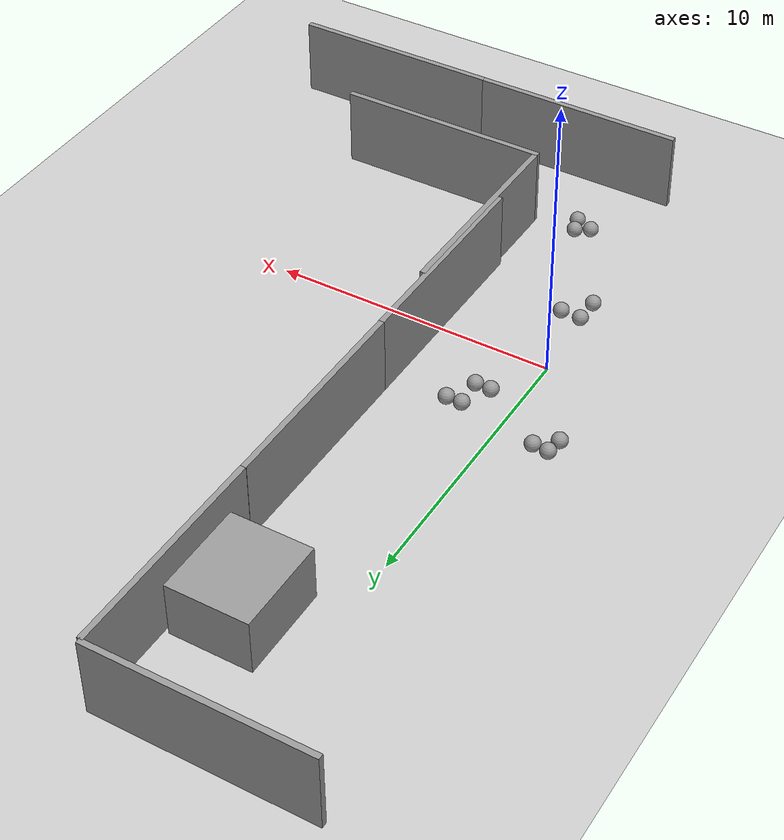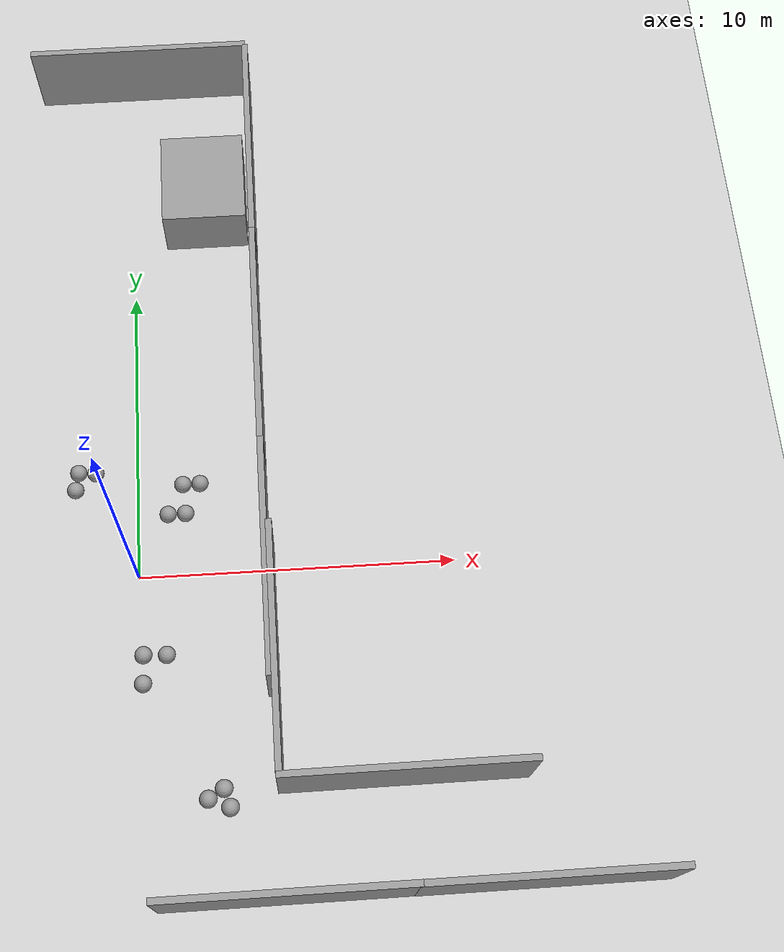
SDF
<sdf version="1.7">
 <world name="default">
  <model name="ground_plane">
   <static>1</static>
   <link name="link">
    <collision name="collision">
     <geometry><plane><normal>0 0 1</normal><size>100 100</size></plane></geometry>
     <surface><friction><ode><mu>100</mu><mu2>50</mu2></ode></friction></surface>
    </collision>
    <visual name="visual">
     <cast_shadows>0</cast_shadows>
     <geometry><plane><normal>0 0 1</normal><size>100 100</size></plane></geometry>
     <material>
      <script><uri>file://media/materials/scripts/gazebo.material</uri><name>Gazebo/Grey</name></script>
     </material>
    </visual>
   </link>
  </model>
  <model name="grey_wall_clone">
   <static>1</static>
   <link name="link">
    <pose>0 0 1.4 0 -0 0</pose>
    <collision name="collision"><geometry><box><size>7.5 0.2 2.8</size></box></geometry></collision>
    <visual name="visual">
     <cast_shadows>0</cast_shadows>
     <geometry><box><size>7.5 0.2 2.8</size></box></geometry>
     <material>
      <script>
       <uri>model://grey_wall/materials/scripts</uri>
       <uri>model://grey_wall/materials/textures</uri>
       <name>vrc/grey_wall</name>
      </script>
     </material>
    </visual>
   </link>
   <pose>4.03876 -0.275369 0 0 0 -1.57834</pose>
  </model>
  <model name="grey_wall_clone_1">
   <static>1</static>
   <link name="link">
    <pose>0 0 1.4 0 -0 0</pose>
    <collision name="collision"><geometry><box><size>7.5 0.2 2.8</size></box></geometry></collision>
    <visual name="visual">
     <cast_shadows>0</cast_shadows>
     <geometry><box><size>7.5 0.2 2.8</size></box></geometry>
     <material>
      <script>
       <uri>model://grey_wall/materials/scripts</uri>
       <uri>model://grey_wall/materials/textures</uri>
       <name>vrc/grey_wall</name>
      </script>
     </material>
    </visual>
   </link>
   <pose>4.09471 7.22499 0 0 0 -1.57834</pose>
  </model>
  <model name="grey_wall_clone_2">
   <static>1</static>
   <link name="link">
    <pose>0 0 1.4 0 -0 0</pose>
    <collision name="collision"><geometry><box><size>7.5 0.2 2.8</size></box></geometry></collision>
    <visual name="visual">
     <cast_shadows>0</cast_shadows>
     <geometry><box><size>7.5 0.2 2.8</size></box></geometry>
     <material>
      <script>
       <uri>model://grey_wall/materials/scripts</uri>
       <uri>model://grey_wall/materials/textures</uri>
       <name>vrc/grey_wall</name>
      </script>
     </material>
    </visual>
   </link>
   <pose>4.15738 14.7199 0 0 0 -1.57834</pose>
  </model>
  <model name="grey_wall_clone_3_clone">
   <static>1</static>
   <link name="link">
    <pose>0 0 1.4 0 -0 0</pose>
    <collision name="collision"><geometry><box><size>7.5 0.2 2.8</size></box></geometry></collision>
    <visual name="visual">
     <cast_shadows>0</cast_shadows>
     <geometry><box><size>7.5 0.2 2.8</size></box></geometry>
     <material>
      <script>
       <uri>model://grey_wall/materials/scripts</uri>
       <uri>model://grey_wall/materials/textures</uri>
       <name>vrc/grey_wall</name>
      </script>
     </material>
    </visual>
   </link>
   <pose>0.448601 18.5165 -0 0 -0 0.002725</pose>
  </model>
  <model name="unit_box">
   <pose>2.5145 13.6164 0.980728 -0 1e-06 0.000988</pose>
   <link name="link">
    <inertial>
     <mass>1</mass>
     <inertia>
      <ixx>0.166667</ixx>
      <ixy>0</ixy>
      <ixz>0</ixz>
      <iyy>0.166667</iyy>
      <iyz>0</iyz>
      <izz>0.166667</izz>
     </inertia>
    </inertial>
    <collision name="collision"><geometry><box><size>2.81702 3.26007 1.96146</size></box></geometry></collision>
    <visual name="visual">
     <geometry><box><size>2.81702 3.26007 1.96146</size></box></geometry>
     <material>
      <script><name>Gazebo/Grey</name><uri>file://media/materials/scripts/gazebo.material</uri></script>
     </material>
    </visual>
   </link>
  </model>
  <model name="grey_wall_clone_3_clone_4">
   <static>1</static>
   <link name="link">
    <pose>0 0 1.4 0 -0 0</pose>
    <collision name="collision"><geometry><box><size>7.5 0.2 2.8</size></box></geometry></collision>
    <visual name="visual">
     <cast_shadows>0</cast_shadows>
     <geometry><box><size>7.5 0.2 2.8</size></box></geometry>
     <material>
      <script>
       <uri>model://grey_wall/materials/scripts</uri>
       <uri>model://grey_wall/materials/textures</uri>
       <name>vrc/grey_wall</name>
      </script>
     </material>
    </visual>
   </link>
   <pose>4.18093 -9.98458 -0 0 -0 0.002725</pose>
  </model>
  <model name="grey_wall_clone_3_clone_5">
   <static>1</static>
   <link name="link">
    <pose>0 0 1.4 0 -0 0</pose>
    <collision name="collision"><geometry><box><size>7.5 0.2 2.8</size></box></geometry></collision>
    <visual name="visual">
     <cast_shadows>0</cast_shadows>
     <geometry><box><size>7.5 0.2 2.8</size></box></geometry>
     <material>
      <script>
       <uri>model://grey_wall/materials/scripts</uri>
       <uri>model://grey_wall/materials/textures</uri>
       <name>vrc/grey_wall</name>
      </script>
     </material>
    </visual>
   </link>
   <pose>7.80817 -6.82182 -0 0 -0 0.002725</pose>
  </model>
  <model name="grey_wall_clone_3_clone_6">
   <static>1</static>
   <link name="link">
    <pose>0 0 1.4 0 -0 0</pose>
    <collision name="collision"><geometry><box><size>7.5 0.2 2.8</size></box></geometry></collision>
    <visual name="visual">
     <cast_shadows>0</cast_shadows>
     <geometry><box><size>7.5 0.2 2.8</size></box></geometry>
     <material>
      <script>
       <uri>model://grey_wall/materials/scripts</uri>
       <uri>model://grey_wall/materials/textures</uri>
       <name>vrc/grey_wall</name>
      </script>
     </material>
    </visual>
   </link>
   <pose>11.5884 -9.97036 -0 0 -0 0.002725</pose>
  </model>
  <model name="grey_wall_clone_clone">
   <static>1</static>
   <link name="link">
    <pose>0 0 1.4 0 -0 0</pose>
    <collision name="collision"><geometry><box><size>7.5 0.2 2.8</size></box></geometry></collision>
    <visual name="visual">
     <cast_shadows>0</cast_shadows>
     <geometry><box><size>7.5 0.2 2.8</size></box></geometry>
     <material>
      <script>
       <uri>model://grey_wall/materials/scripts</uri>
       <uri>model://grey_wall/materials/textures</uri>
       <name>vrc/grey_wall</name>
      </script>
     </material>
    </visual>
   </link>
   <pose>4.16941 -2.99665 0 0 0 -1.57834</pose>
  </model>
  <model name="unit_sphere">
   <pose>0.10273 -3.45151 0.271614 0 -0 0</pose>
   <link name="link">
    <inertial>
     <mass>1</mass>
     <inertia><ixx>0.1</ixx><ixy>0</ixy><ixz>0</ixz><iyy>0.1</iyy><iyz>0</iyz><izz>0.1</izz></inertia>
    </inertial>
    <collision name="collision"><geometry><sphere><radius>0.271614</radius></sphere></geometry></collision>
    <visual name="visual">
     <geometry><sphere><radius>0.271614</radius></sphere></geometry>
     <material>
      <script><name>Gazebo/Grey</name><uri>file://media/materials/scripts/gazebo.material</uri></script>
     </material>
    </visual>
   </link>
  </model>
  <model name="unit_sphere_clone">
   <pose>0.842718 -2.58838 0.271614 0 -0 0</pose>
   <link name="link">
    <inertial>
     <mass>1</mass>
     <inertia><ixx>0.1</ixx><ixy>0</ixy><ixz>0</ixz><iyy>0.1</iyy><iyz>0</iyz><izz>0.1</izz></inertia>
    </inertial>
    <collision name="collision"><geometry><sphere><radius>0.271614</radius></sphere></geometry></collision>
    <visual name="visual">
     <geometry><sphere><radius>0.271614</radius></sphere></geometry>
     <material>
      <script><name>Gazebo/Grey</name><uri>file://media/materials/scripts/gazebo.material</uri></script>
     </material>
    </visual>
   </link>
  </model>
  <model name="unit_sphere_clone_0">
   <pose>0.122087 -2.55595 0.271614 0 -0 0</pose>
   <link name="link">
    <inertial>
     <mass>1</mass>
     <inertia><ixx>0.1</ixx><ixy>0</ixy><ixz>0</ixz><iyy>0.1</iyy><iyz>0</iyz><izz>0.1</izz></inertia>
    </inertial>
    <collision name="collision"><geometry><sphere><radius>0.271614</radius></sphere></geometry></collision>
    <visual name="visual">
     <geometry><sphere><radius>0.271614</radius></sphere></geometry>
     <material>
      <script><name>Gazebo/Grey</name><uri>file://media/materials/scripts/gazebo.material</uri></script>
     </material>
    </visual>
   </link>
  </model>
  <model name="unit_sphere_clone_7">
   <pose>1.52386 2 0.271614 0 0.029504 0</pose>
   <link name="link">
    <inertial>
     <mass>1</mass>
     <inertia><ixx>0.1</ixx><ixy>0</ixy><ixz>0</ixz><iyy>0.1</iyy><iyz>0</iyz><izz>0.1</izz></inertia>
    </inertial>
    <collision name="collision"><geometry><sphere><radius>0.271614</radius></sphere></geometry></collision>
    <visual name="visual">
     <geometry><sphere><radius>0.271614</radius></sphere></geometry>
     <material>
      <script><name>Gazebo/Grey</name><uri>file://media/materials/scripts/gazebo.material</uri></script>
     </material>
    </visual>
   </link>
  </model>
  <model name="unit_sphere_clone_8">
   <pose>2.00935 3 0.271614 0 0.018438 0</pose>
   <link name="link">
    <inertial>
     <mass>1</mass>
     <inertia><ixx>0.1</ixx><ixy>0</ixy><ixz>0</ixz><iyy>0.1</iyy><iyz>0</iyz><izz>0.1</izz></inertia>
    </inertial>
    <collision name="collision"><geometry><sphere><radius>0.271614</radius></sphere></geometry></collision>
    <visual name="visual">
     <geometry><sphere><radius>0.271614</radius></sphere></geometry>
     <material>
      <script><name>Gazebo/Grey</name><uri>file://media/materials/scripts/gazebo.material</uri></script>
     </material>
    </visual>
   </link>
  </model>
  <model name="unit_sphere_clone_9">
   <pose>0.964646 2 0.271614 0 -0.029411 0</pose>
   <link name="link">
    <inertial>
     <mass>1</mass>
     <inertia><ixx>0.1</ixx><ixy>0</ixy><ixz>0</ixz><iyy>0.1</iyy><iyz>0</iyz><izz>0.1</izz></inertia>
    </inertial>
    <collision name="collision"><geometry><sphere><radius>0.271614</radius></sphere></geometry></collision>
    <visual name="visual">
     <geometry><sphere><radius>0.271614</radius></sphere></geometry>
     <material>
      <script><name>Gazebo/Grey</name><uri>file://media/materials/scripts/gazebo.material</uri></script>
     </material>
    </visual>
   </link>
  </model>
  <model name="unit_sphere_clone_10">
   <pose>1.45614 3 0.271614 0 -0.018372 0</pose>
   <link name="link">
    <inertial>
     <mass>1</mass>
     <inertia><ixx>0.1</ixx><ixy>0</ixy><ixz>0</ixz><iyy>0.1</iyy><iyz>0</iyz><izz>0.1</izz></inertia>
    </inertial>
    <collision name="collision"><geometry><sphere><radius>0.271614</radius></sphere></geometry></collision>
    <visual name="visual">
     <geometry><sphere><radius>0.271614</radius></sphere></geometry>
     <material>
      <script><name>Gazebo/Grey</name><uri>file://media/materials/scripts/gazebo.material</uri></script>
     </material>
    </visual>
   </link>
  </model>
  <model name="unit_sphere_clone_11">
   <pose>-1.90526 3.5926 0.271614 -0.00212 -0.025744 4e-05</pose>
   <link name="link">
    <inertial>
     <mass>1</mass>
     <inertia><ixx>0.1</ixx><ixy>0</ixy><ixz>0</ixz><iyy>0.1</iyy><iyz>0</iyz><izz>0.1</izz></inertia>
    </inertial>
    <collision name="collision"><geometry><sphere><radius>0.271614</radius></sphere></geometry></collision>
    <visual name="visual">
     <geometry><sphere><radius>0.271614</radius></sphere></geometry>
     <material>
      <script><name>Gazebo/Grey</name><uri>file://media/materials/scripts/gazebo.material</uri></script>
     </material>
    </visual>
   </link>
  </model>
  <model name="unit_sphere_clone_12">
   <pose>-1.3499 3.54716 0.271614 0.002134 0.025637 4e-05</pose>
   <link name="link">
    <inertial>
     <mass>1</mass>
     <inertia><ixx>0.1</ixx><ixy>0</ixy><ixz>0</ixz><iyy>0.1</iyy><iyz>0</iyz><izz>0.1</izz></inertia>
    </inertial>
    <collision name="collision"><geometry><sphere><radius>0.271614</radius></sphere></geometry></collision>
    <visual name="visual">
     <geometry><sphere><radius>0.271614</radius></sphere></geometry>
     <material>
      <script><name>Gazebo/Grey</name><uri>file://media/materials/scripts/gazebo.material</uri></script>
     </material>
    </visual>
   </link>
  </model>
  <model name="unit_sphere_clone_13">
   <pose>-2 3 0.271614 0 -0 0</pose>
   <link name="link">
    <inertial>
     <mass>1</mass>
     <inertia><ixx>0.1</ixx><ixy>0</ixy><ixz>0</ixz><iyy>0.1</iyy><iyz>0</iyz><izz>0.1</izz></inertia>
    </inertial>
    <collision name="collision"><geometry><sphere><radius>0.271614</radius></sphere></geometry></collision>
    <visual name="visual">
     <geometry><sphere><radius>0.271614</radius></sphere></geometry>
     <material>
      <script><name>Gazebo/Grey</name><uri>file://media/materials/scripts/gazebo.material</uri></script>
     </material>
    </visual>
   </link>
  </model>
  <model name="unit_sphere_clone_14">
   <pose>2.63125 -7.28357 0.271614 0 -0 0</pose>
   <link name="link">
    <inertial>
     <mass>1</mass>
     <inertia><ixx>0.1</ixx><ixy>0</ixy><ixz>0</ixz><iyy>0.1</iyy><iyz>0</iyz><izz>0.1</izz></inertia>
    </inertial>
    <collision name="collision"><geometry><sphere><radius>0.271614</radius></sphere></geometry></collision>
    <visual name="visual">
     <geometry><sphere><radius>0.271614</radius></sphere></geometry>
     <material>
      <script><name>Gazebo/Grey</name><uri>file://media/materials/scripts/gazebo.material</uri></script>
     </material>
    </visual>
   </link>
  </model>
  <model name="unit_sphere_clone_15">
   <pose>2.46441 -6.72788 0.271614 -0.009316 0.015898 -8e-05</pose>
   <link name="link">
    <inertial>
     <mass>1</mass>
     <inertia><ixx>0.1</ixx><ixy>0</ixy><ixz>0</ixz><iyy>0.1</iyy><iyz>0</iyz><izz>0.1</izz></inertia>
    </inertial>
    <collision name="collision"><geometry><sphere><radius>0.271614</radius></sphere></geometry></collision>
    <visual name="visual">
     <geometry><sphere><radius>0.271614</radius></sphere></geometry>
     <material>
      <script><name>Gazebo/Grey</name><uri>file://media/materials/scripts/gazebo.material</uri></script>
     </material>
    </visual>
   </link>
  </model>
  <model name="unit_sphere_clone_16">
   <pose>1.9871 -7.00755 0.271614 0.009317 -0.015857 -8e-05</pose>
   <link name="link">
    <inertial>
     <mass>1</mass>
     <inertia><ixx>0.1</ixx><ixy>0</ixy><ixz>0</ixz><iyy>0.1</iyy><iyz>0</iyz><izz>0.1</izz></inertia>
    </inertial>
    <collision name="collision"><geometry><sphere><radius>0.271614</radius></sphere></geometry></collision>
    <visual name="visual">
     <geometry><sphere><radius>0.271614</radius></sphere></geometry>
     <material>
      <script><name>Gazebo/Grey</name><uri>file://media/materials/scripts/gazebo.material</uri></script>
     </material>
    </visual>
   </link>
  </model>
 </world>
</sdf>
